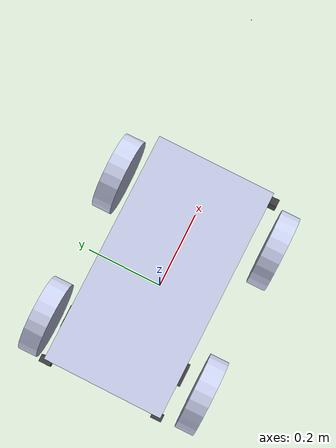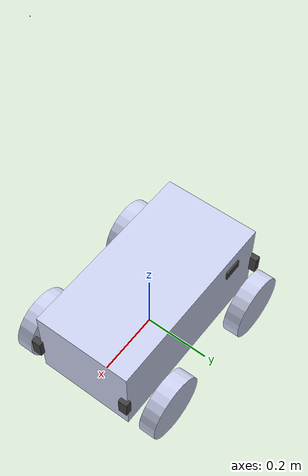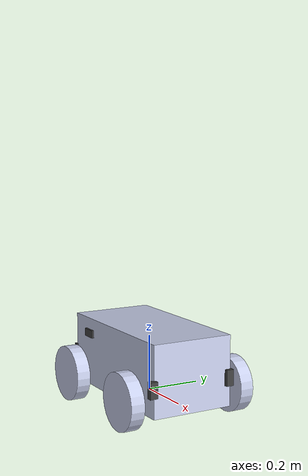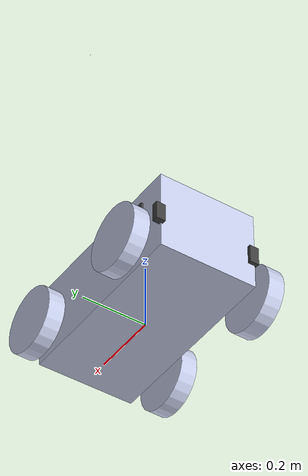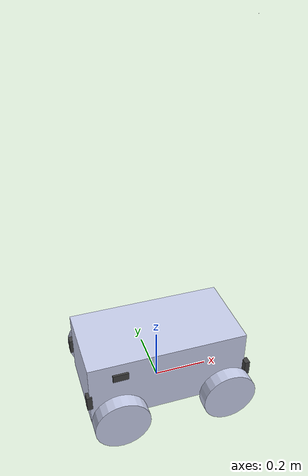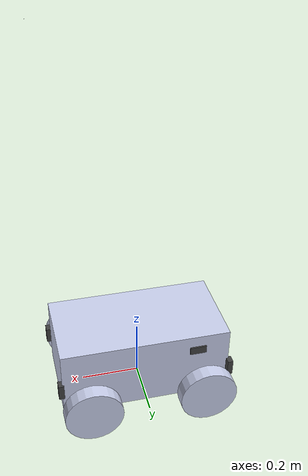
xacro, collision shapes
<?xml version="1.0"?>
<!--
  Project Name: ebot
  Created on:   2.10.2020
  Author: ROS team
  Copyright (c) 2020 eYantra IITB
-->
<robot name="ebot" xmlns:xacro="http://www.ros.org/wiki/xacro">
<xacro:include filename="$(find ebot_description)/urdf/ebot.gazebo" />

<!--   base of the robot -->

  <link
    name="ebot_base">
    <inertial>
      <origin
   xyz="0 0.0 0.12"
        rpy="0 0 0" />
      <mass
        value="28" />
         <inertia ixx="0.356" ixy="0" ixz="0" iyy="0.9443" iyz="0" izz="1.008"/>
    </inertial>
    <visual>
      <origin
        xyz="0 0 0"
        rpy="0 0 0" />
      <geometry>
        <mesh
          filename="package://ebot_description/meshes/chassis.STL" />
      </geometry>
      <material
        name="">
        <color
          rgba="0.79216 0.81961 0.93333 1" />
      </material>
    </visual>
    <collision>
    <origin
        xyz="0 0.0 0.12"
        rpy="0 0 0" />
      <geometry>
     <box size="0.585 0.30 0.25"/>
      </geometry>
    </collision>
  </link>

<!-- front wheel right -->

  <link
    name="FWR">
    <inertial>
      <origin
        xyz="6.6592E-05 0.025016 -1.3483E-06"
        rpy="0 0 0" />
      <mass
        value="0.7" />
          <inertia ixx="0.003" ixy="0" ixz="0" iyy="0.0030" iyz="0" izz="0.0035"/>
    </inertial>
    <visual>
      <origin
        xyz="0 0 0"
        rpy="0 0 0" />
      <geometry>
        <mesh
          filename="package://ebot_description/meshes/FWR.STL" />
      </geometry>
      <material
        name="">
        <color
          rgba="0.79216 0.81961 0.93333 1" />
      </material>
    </visual>
    <collision>
      <origin
         xyz="0 0.025 0"
        rpy="1.57 1.57 0" />
      <geometry>
         <cylinder length="0.05" radius="0.1"/>
      </geometry>
    </collision>
  </link>
  <joint
    name="FWRJ"
    type="continuous">
    <origin
      xyz="0.202539503068943 -0.189027702306049 0.0449999999999943"
      rpy="-3.14159265358979 0.911096362238563 0.00679706827343889" />
    <parent
      link="ebot_base" />
    <child
      link="FWR" />
    <axis
      xyz="0 -1 0" />
  </joint>

<!-- front wheel left -->
  <link
    name="FWL">
    <inertial>
      <origin
        xyz="6.6594E-05 0.025016 -1.349E-06"
        rpy="0 0 0" />
      <mass
        value="0.7" />
           <inertia ixx="0.003" ixy="0" ixz="0" iyy="0.0030" iyz="0" izz="0.0035"/>
    </inertial>
    <visual>
      <origin
        xyz="0 0 0"
        rpy="0 0 0" />
      <geometry>
        <mesh
          filename="package://ebot_description/meshes/FWL.STL" />
      </geometry>
      <material
        name="">
        <color
          rgba="0.79216 0.81961 0.93333 1" />
      </material>
    </visual>
    <collision>
      <origin
         xyz="0 0.025 0"
        rpy="1.57 1.57 0" />
      <geometry>
         <cylinder length="0.05" radius="0.1"/>
      </geometry>
    </collision>
  </link>
  <joint
    name="FWLJ"
    type="continuous">
    <origin
      xyz="0.199948480594093 0.192163491981716 0.0450000000000047"
      rpy="0 0 0.00679706827344463" />
    <parent
      link="ebot_base" />
    <child
      link="FWL" />
    <axis
      xyz="0 1 0" />
  </joint>

<!--   rear wheel right -->
  <link
    name="RWR">
    <inertial>
      <origin
        xyz="6.6592E-05 0.025016 -1.3483E-06"
        rpy="0 0 0" />
      <mass
        value="0.7" />
           <inertia ixx="0.003" ixy="0" ixz="0" iyy="0.0030" iyz="0" izz="0.0035"/>
    </inertial>
    <visual>
      <origin
        xyz="0 0 0"
        rpy="0 0 0" />
      <geometry>
        <mesh
          filename="package://ebot_description/meshes/RWR.STL" />
      </geometry>
      <material
        name="">
        <color
          rgba="0.79216 0.81961 0.93333 1" />
      </material>
    </visual>
   <collision>
      <origin
         xyz="0 0.025 0"
        rpy="1.57 1.57 0" />
      <geometry>
         <cylinder length="0.05" radius="0.1"/>
      </geometry>
    </collision>
  </link>
  <joint
    name="RWRJ"
    type="continuous">
    <origin
      xyz="-0.197451256939211 -0.191746508680447 0.044999999999993"
      rpy="-3.14159265358979 0.544912084409921 0.00679706827344312" />
    <parent
      link="ebot_base" />
    <child
      link="RWR" />
    <axis
      xyz="0 -1 0" />
  </joint>

<!--   rear wheel left -->
  <link
    name="RWL">
    <inertial>
      <origin
        xyz="6.6594E-05 0.025016 -1.349E-06"
        rpy="0 0 0" />
      <mass
        value="0.7" />
        <inertia ixx="0.003" ixy="0" ixz="0" iyy="0.0030" iyz="0" izz="0.0035"/>
    </inertial>
    <visual>
      <origin
        xyz="0 0 0"
        rpy="0 0 0" />
      <geometry>
        <mesh
          filename="package://ebot_description/meshes/RWL.STL" />
      </geometry>
      <material
        name="">
        <color
          rgba="0.79216 0.81961 0.93333 1" />
      </material>
    </visual>
   <collision>
      <origin
         xyz="0 0.025 0"
        rpy="1.57 1.57 0" />
      <geometry>
         <cylinder length="0.05" radius="0.1"/>
      </geometry>
    </collision>
  </link>
  <joint
    name="RWLJ"
    type="continuous">
    <origin
      xyz="-0.200042279414009 0.189444685607321 0.0449999999999969"
      rpy="0 0 0.00679706827344463" />
    <parent
      link="ebot_base" />
    <child
      link="RWL" />
    <axis
      xyz="0 1 0" />
  </joint>

<!-- Sensors link -->

<!-- intel real sense -->

  <!-- Intel real sense Camera for 3D mapping-->
  <joint name="realsensejoint" type="fixed">
    <axis xyz="0 0 0" />
    <origin xyz="0.277944460576403 0.00208437301780086 1.3" rpy="0 0.45 0"/>
    <parent link="ebot_base"/>
    <child link="camera_link"/>
  </joint>

  <link name="camera_link">
    <collision>
      <origin xyz="0.02 0 0" rpy="0 0 0"/>
      <geometry>0
        <box size="0.001 0.001 0.001"/>
      </geometry>
    </collision>

    <visual>
      <origin xyz="0 0 0" rpy="1.5707 0 1.5707"/>
      <geometry>
        <mesh filename="package://ebot_description/meshes/NAVRS.STL" />
      </geometry>
    </visual>

    <inertial>
      <mass value="1e-5" />
      <origin xyz="0 0 0" rpy="0 0 0"/>
      <inertia ixx="0" ixy="0" ixz="0" iyy="0" iyz="0" izz="0" />
    </inertial>
  </link>

  <joint name="camera_optical_joint" type="fixed">
    <origin xyz="0 0 0" rpy="${-pi/2} 0 ${-pi/2}"/>
    <parent link="camera_link"/>
    <child link="camera_rgb_frame"/>
  </joint>

  <link name="camera_rgb_frame">
  </link>

  <joint name="camera_depth_joint" type="fixed">
    <origin xyz="0 0 0" rpy="${-pi/2} 0 ${-pi/2}"/>
    <parent link="camera_link"/>
    <child link="camera_depth_frame"/>
  </joint>

    <link name="camera_depth_frame">
  </link>

<!-- intel real sense front-->

<!-- GPS antenna -->

 <!--  Rear real sense -->

<!-- LIDAR -->
<link name="laser">
    <origin rpy="0 0 0" xyz="0 0 0"/>
    <inertial>
      <mass value="0.09"/>
      <inertia ixx="4.275e-05" ixy="0" ixz="0" iyy="4.275e-05" iyz="0" izz="5.5125e-05"/>
    </inertial>
    <collision>
      <origin rpy="0 0 0" xyz="0 0 0"/>
      <geometry>
        <cylinder length="0.040" radius="0.030"/>
      </geometry>
    </collision>
    <visual>
      <origin rpy="0 0 0" xyz="0 0 0"/>
      <geometry>
        <cylinder length="0.040" radius="0.030"/>
      </geometry>
    </visual>
  </link>

  <joint name="rplidar_joint" type="fixed">
    <axis xyz="0 1 0"/>
    <origin xyz="0.255540836099039 0 0.18"
      rpy="0 0 0.00679706827344463" />

    <parent link="ebot_base"/>
    <child link="laser"/>
    <limit effort="1000" lower="0" upper="6.28" velocity="100"/>
    <axis rpy="0 0 0" xyz="0.02 0 0.178"/>
    <joint_properties damping="5.0" friction="1.0"/>
  </joint>

<!-- front ultrasonic sensor 1-->
  <link
    name="FUS1">
    <inertial>
      <origin
        xyz="-0.00265918092876655 2.08166817117217E-17 0.0100193625139959"
        rpy="0 0 0" />
      <mass
        value="0.0152532066391543" />
      <inertia
        ixx="4.77814992940302E-06"
        ixy="-2.01819824421892E-21"
        ixz="2.64657807499124E-08"
        iyy="1.003384637723E-06"
        iyz="-8.80528876343328E-21"
        izz="4.55679776636487E-06" />
    </inertial>
    <visual>
      <origin
        xyz="0 0 0"
        rpy="0 0 0" />
      <geometry>
        <mesh
          filename="package://ebot_description/meshes/FUS1.STL" />
      </geometry>
      <material
        name="">
        <color
          rgba="0.250980392156863 0.250980392156863 0.250980392156863 1" />
      </material>
    </visual>
    <collision>
      <origin
        xyz="0 0 0"
        rpy="0 0 0" />
      <geometry>
          <box size="0.019 0.057 0.028"/>
      </geometry>
    </collision>
  </link>
  <joint
    name="FUS1J"
    type="fixed">
    <origin
      xyz="0.297825909825268 -0.157279305693451 0.0977263808983278"
      rpy="-1.5707963267949 0 0.00679706827344463" />
    <parent
      link="ebot_base" />
    <child
      link="FUS1" />
    <axis
      xyz="0 0 0" />
  </joint>

<!-- front ultrasonic sensor 2 -->
  <link
    name="FUS2">
    <inertial>
      <origin
        xyz="-0.0026592 1.9949E-17 0.010019"
        rpy="0 0 0" />
      <mass
        value="0.015253" />
      <inertia
        ixx="4.7781E-06"
        ixy="-2.0925E-21"
        ixz="2.6466E-08"
        iyy="1.0034E-06"
        iyz="-9.4695E-21"
        izz="4.5568E-06" />
    </inertial>
    <visual>
      <origin
        xyz="0 0 0"
        rpy="0 0 0" />
      <geometry>
        <mesh
          filename="package://ebot_description/meshes/FUS2.STL" />
      </geometry>
      <material
        name="">
        <color
          rgba="0.25098 0.25098 0.25098 1" />
      </material>
    </visual>
    <collision>
      <origin
        xyz="0 0 0"
        rpy="0 0 0" />
      <geometry>
           <box size="0.019 0.057 0.028"/>
      </geometry>
    </collision>
  </link>
  <joint
    name="FUS2J"
    type="fixed">
    <origin
      xyz="0.295786805044471 0.142713764312663 0.0977263808983286"
      rpy="-1.5707963267949 0 0.00679706827344463" />
    <parent
      link="ebot_base" />
    <child
      link="FUS2" />
    <axis
      xyz="0 0 0" />
  </joint>

<!--   front ultrasonic sensor 3 -->
  <link
    name="FUS3">
    <inertial>
      <origin
        xyz="-0.0026592 5.5511E-17 0.010019"
        rpy="0 0 0" />
      <mass
        value="0.015253" />
      <inertia
        ixx="4.7781E-06"
        ixy="2.7832E-20"
        ixz="2.6466E-08"
        iyy="1.0034E-06"
        iyz="1.4502E-20"
        izz="4.5568E-06" />
    </inertial>
    <visual>
      <origin
        xyz="0 0 0"
        rpy="0 0 0" />
      <geometry>
        <mesh
          filename="package://ebot_description/meshes/FUS3.STL" />
      </geometry>
      <material
        name="">
        <color
          rgba="0.25098 0.25098 0.25098 1" />
      </material>
    </visual>
    <collision>
      <origin
        xyz="0 0 0"
        rpy="0 0 0" />
      <geometry>
           <box size="0.019 0.057 0.028"/>
      </geometry>
    </collision>
  </link>
  <joint
    name="FUS3J"
    type="fixed">
    <origin
      xyz="0.27274874909921 -0.0749478536996718 0.0424745013517897"
      rpy="0 0.785398163397449 0.00679706827344116" />
    <parent
      link="ebot_base" />
    <child
      link="FUS3" />
    <axis
      xyz="0 0 0" />
  </joint>

<!--   front ultrasonic sensor 4 -->
  <link
    name="FUS4">
    <inertial>
      <origin
        xyz="-0.00265918092876644 6.93889390390723E-17 0.0100193625139959"
        rpy="0 0 0" />
      <mass
        value="0.0152532066391543" />
      <inertia
        ixx="4.77814992940302E-06"
        ixy="2.8163959262392E-20"
        ixz="2.64657807499109E-08"
        iyy="1.003384637723E-06"
        iyz="2.09456577324828E-20"
        izz="4.55679776636487E-06" />
    </inertial>
    <visual>
      <origin
        xyz="0 0 0"
        rpy="0 0 0" />
      <geometry>
        <mesh
          filename="package://ebot_description/meshes/FUS4.STL" />
      </geometry>
      <material
        name="">
        <color
          rgba="0.250980392156863 0.250980392156863 0.250980392156863 1" />
      </material>
    </visual>
    <collision>
      <origin
        xyz="0 0 0"
        rpy="0 0 0" />
      <geometry>
           <box size="0.019 0.057 0.028"/>
      </geometry>
    </collision>
  </link>
  <joint
    name="FUS4J"
    type="fixed">
    <origin
      xyz="0.271702008645067 0.0790485889034664 0.0424745013517894"
      rpy="0 0.785398163397449 0.00679706827344116" />
    <parent
      link="ebot_base" />
    <child
      link="FUS4" />
    <axis
      xyz="0 0 0" />
  </joint>

<!--   Rear ultra sonic sensor 5 -->
  <link
    name="RUS5">
    <inertial>
      <origin
        xyz="-0.0026592 2.6021E-17 0.010019"
        rpy="0 0 0" />
      <mass
        value="0.015253" />
      <inertia
        ixx="4.7781E-06"
        ixy="-1.9723E-21"
        ixz="2.6466E-08"
        iyy="1.0034E-06"
        iyz="-7.7105E-21"
        izz="4.5568E-06" />
    </inertial>
    <visual>
      <origin
        xyz="0 0 0"
        rpy="0 0 0" />
      <geometry>
        <mesh
          filename="package://ebot_description/meshes/RUS5.STL" />
      </geometry>
      <material
        name="">
        <color
          rgba="0.25098 0.25098 0.25098 1" />
      </material>
    </visual>
    <collision>
      <origin
        xyz="0 0 0"
        rpy="0 0 0" />
      <geometry>
           <box size="0.019 0.057 0.028"/>
      </geometry>
    </collision>
  </link>
  <joint
    name="RUS5J"
    type="fixed">
    <origin
      xyz="-0.29532868617037 0.157696288994793 0.0977029437251515"
      rpy="-1.5707963267949 0 -3.13479558531634" />
    <parent
      link="ebot_base" />
    <child
      link="RUS5" />
    <axis
      xyz="0 0 0" />
  </joint>

<!--   Rear ultra sonic sensor 6 -->
  <link
    name="RUS6">
    <inertial>
      <origin
        xyz="-0.00265918092876644 2.34187669256869E-17 0.0100193625139959"
        rpy="0 0 0" />
      <mass
        value="0.0152532066391543" />
      <inertia
        ixx="4.77814992940302E-06"
        ixy="-1.34867897211379E-21"
        ixz="2.64657807499114E-08"
        iyy="1.003384637723E-06"
        iyz="-1.29818552470248E-20"
        izz="4.55679776636487E-06" />
    </inertial>
    <visual>
      <origin
        xyz="0 0 0"
        rpy="0 0 0" />
      <geometry>
        <mesh
          filename="package://ebot_description/meshes/RUS6.STL" />
      </geometry>
      <material
        name="">
        <color
          rgba="0.250980392156863 0.250980392156863 0.250980392156863 1" />
      </material>
    </visual>
    <collision>
      <origin
        xyz="0 0 0"
        rpy="0 0 0" />
      <geometry>
           <box size="0.019 0.057 0.028"/>
      </geometry>
    </collision>
  </link>
  <joint
    name="RUS6J"
    type="fixed">
    <origin
      xyz="-0.293289581389573 -0.14229678101132 0.0977029437251508"
      rpy="-1.5707963267949 0 -3.13479558531634" />
    <parent
      link="ebot_base" />
    <child
      link="RUS6" />
    <axis
      xyz="0 0 0" />
  </joint>

<!--   Right ultra sonic sensor 7 -->
  <link
    name="RHUS7">
    <inertial>
      <origin
        xyz="-0.00265918092876641 1.23570598198341E-12 0.0100193625139959"
        rpy="0 0 0" />
      <mass
        value="0.0152532066391543" />
      <inertia
        ixx="4.77814992940302E-06"
        ixy="3.27217392921119E-18"
        ixz="2.64657807499107E-08"
        iyy="1.003384637723E-06"
        iyz="4.38229124201629E-16"
        izz="4.55679776636487E-06" />
    </inertial>
    <visual>
      <origin
        xyz="0 0 0"
        rpy="0 0 0" />
      <geometry>
        <mesh
          filename="package://ebot_description/meshes/RHUS7.STL" />
      </geometry>
      <material
        name="">
        <color
          rgba="0.250980392156863 0.250980392156863 0.250980392156863 1" />
      </material>
    </visual>
    <collision>
      <origin
        xyz="0 0 0"
        rpy="0 0 0" />
      <geometry>
           <box size="0.019 0.057 0.028"/>
      </geometry>
    </collision>
  </link>
  <joint
    name="RHUS7J"
    type="fixed">
    <origin
      xyz="-0.17860231149778 -0.148017381955971 0.189449821416576"
      rpy="0 0 -1.56399925852145" />
    <parent
      link="ebot_base" />
    <child
      link="RHUS7" />
    <axis
      xyz="0 0 0" />
  </joint>

<!--   Right ultra sonicsensor 9 -->
  <link
    name="RHUS9">
    <inertial>
      <origin
        xyz="-0.0026592 6.9389E-18 0.010019"
        rpy="0 0 0" />
      <mass
        value="0.015253" />
      <inertia
        ixx="4.7781E-06"
        ixy="1.6008E-20"
        ixz="2.6466E-08"
        iyy="1.0034E-06"
        iyz="-1.185E-20"
        izz="4.5568E-06" />
    </inertial>
    <visual>
      <origin
        xyz="0 0 0"
        rpy="0 0 0" />
      <geometry>
        <mesh
          filename="package://ebot_description/meshes/RHUS9.STL" />
      </geometry>
      <material
        name="">
        <color
          rgba="0.25098 0.25098 0.25098 1" />
      </material>
    </visual>
    <collision>
      <origin
        xyz="0 0 0"
        rpy="0 0 0" />
      <geometry>
           <box size="0.019 0.057 0.028"/>
      </geometry>
    </collision>
  </link>
  <joint
    name="RHUS9J"
    type="fixed">
    <origin
      xyz="0.141804076845343 -0.0977216096162414 0.196076309026378"
      rpy="-0.00186883076605492 0.123098458475999 -0.786255211903501" />
    <parent
      link="ebot_base" />
    <child
      link="RHUS9" />
    <axis
      xyz="0 0 0" />
  </joint>

<!--   Left ultra sonic sensor 9 -->
  <link
    name="LHUS9">
    <inertial>
      <origin
        xyz="-0.00265918092876642 -1.2353174039248E-12 0.0100193625139958"
        rpy="0 0 0" />
      <mass
        value="0.0152532066391543" />
      <inertia
        ixx="4.77814992940302E-06"
        ixy="-3.2538981368926E-18"
        ixz="2.64657807499116E-08"
        iyy="1.003384637723E-06"
        iyz="-4.38135627183199E-16"
        izz="4.55679776636487E-06" />
    </inertial>
    <visual>
      <origin
        xyz="0 0 0"
        rpy="0 0 0" />
      <geometry>
        <mesh
          filename="package://ebot_description/meshes/LHUS9.STL" />
      </geometry>
      <material
        name="">
        <color
          rgba="0.250980392156863 0.250980392156863 0.250980392156863 1" />
      </material>
    </visual>
    <collision>
      <origin
        xyz="0 0 0"
        rpy="0 0 0" />
      <geometry>
           <box size="0.019 0.057 0.028"/>
      </geometry>
    </collision>
  </link>
  <joint
    name="LHUS9J"
    type="fixed">
    <origin
      xyz="-0.180600634182961 0.14597582665002 0.189449821416576"
      rpy="0 0 1.57759339506834" />
    <parent
      link="ebot_base" />
    <child
      link="LHUS9" />
    <axis
      xyz="0 0 0" />
  </joint>

<!--   left ultra sonic sensor 10 -->
  <link
    name="LHUS10">
    <inertial>
      <origin
        xyz="-0.0026592 -2.0817E-17 0.010019"
        rpy="0 0 0" />
      <mass
        value="0.015253" />
      <inertia
        ixx="4.7781E-06"
        ixy="1.1539E-20"
        ixz="2.6466E-08"
        iyy="1.0034E-06"
        iyz="-1.2651E-20"
        izz="4.5568E-06" />
    </inertial>
    <visual>
      <origin
        xyz="0 0 0"
        rpy="0 0 0" />
      <geometry>
        <mesh
          filename="package://ebot_description/meshes/LHUS10.STL" />
      </geometry>
      <material
        name="">
        <color
          rgba="0.25098 0.25098 0.25098 1" />
      </material>
    </visual>
    <collision>
      <origin
        xyz="0 0 0"
        rpy="0 0 0" />
      <geometry>
           <box size="0.019 0.057 0.028"/>
      </geometry>
    </collision>
  </link>
  <joint
    name="LHUS10J"
    type="fixed">
    <origin
      xyz="0.14045985551618 0.10004021562239 0.196076309026377"
      rpy="0.00186883076604301 0.123098458475999 0.799849348450393" />
    <parent
      link="ebot_base" />
    <child
      link="LHUS10" />
    <axis
      xyz="0 0 0" />
  </joint>

<!-- IMU -->
  <link name="imu_link">
    <collision>
      <origin xyz="0 0 0" rpy="0 0 0"/>
      <geometry>
        <box size="0.02 0.015 0.008"/>
      </geometry>
    </collision>

    <visual>
      <origin xyz="0 0 0" rpy="0 0 0"/>
    <geometry>
        <box size="0.02 0.015 0.008"/>
      </geometry>
    </visual>

    <inertial>
      <mass value="1e-5" />
      <origin xyz="0 0 0" rpy="0 0 0"/>
      <inertia ixx="0" ixy="0" ixz="0" iyy="0" iyz="0" izz="0" />
    </inertial>
  </link>

  <joint
    name="imujoint"
    type="fixed">
    <origin
      xyz="0 0 0.2"
      rpy="0 0 0" />
    <parent
      link="ebot_base" />
    <child
      link="imu_link" />
    <axis
      xyz="0 0 0" />
  </joint>

	<gazebo>
	  <plugin name="skid_steer_drive_controller" filename="libgazebo_ros_skid_steer_drive.so">
	    <updateRate>100.0</updateRate>
	    <robotNamespace>/</robotNamespace>
	    <leftFrontJoint>FWLJ</leftFrontJoint>
	    <rightFrontJoint>FWRJ</rightFrontJoint>
	    <leftRearJoint>RWLJ</leftRearJoint>
	    <rightRearJoint>RWRJ</rightRearJoint>
	    <wheelSeparation>0.3</wheelSeparation>
	    <wheelDiameter>0.2</wheelDiameter>
	    <robotBaseFrame>ebot_base</robotBaseFrame>
	    <torque>20</torque>
	    <topicName>cmd_vel</topicName>
	    <broadcastTF>false</broadcastTF>
	  </plugin>
	</gazebo>

</robot>
